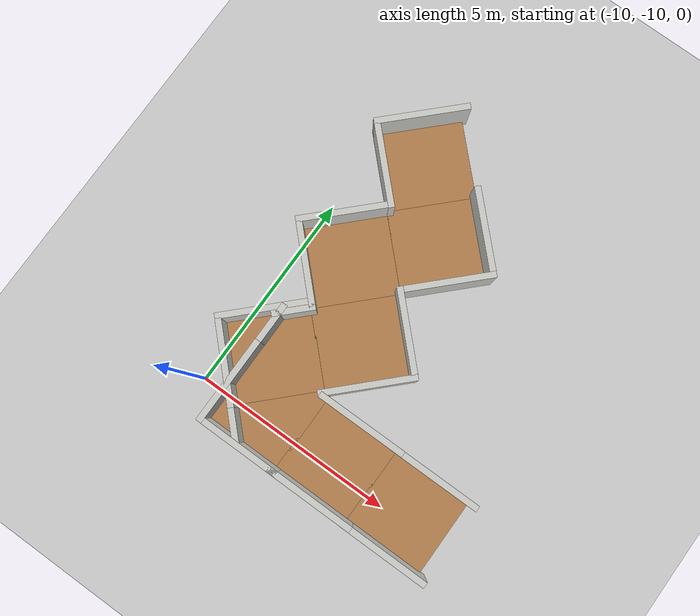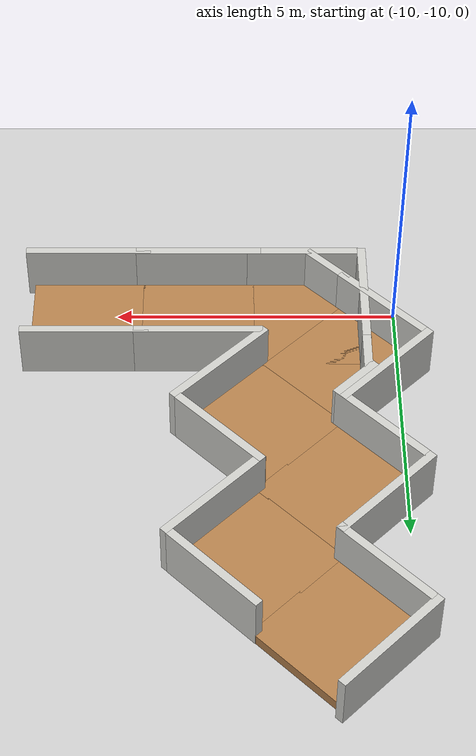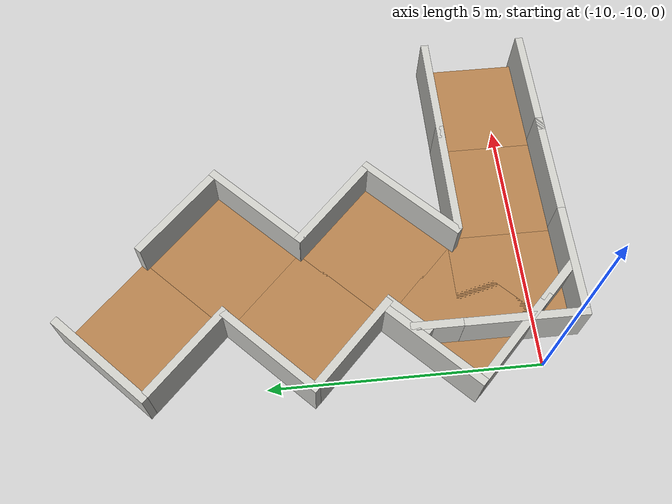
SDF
<sdf version="1.6">
 <world name="default">
  <model name="ground_plane">
   <static>1</static>
   <link name="link">
    <collision name="collision">
     <geometry><plane><normal>0 0 1</normal><size>100 100</size></plane></geometry>
     <surface><friction><ode><mu>100</mu><mu2>50</mu2></ode></friction></surface>
    </collision>
    <visual name="visual">
     <cast_shadows>0</cast_shadows>
     <geometry><plane><normal>0 0 1</normal><size>100 100</size></plane></geometry>
     <material>
      <script><uri>file://media/materials/scripts/gazebo.material</uri><name>Gazebo/Grey</name></script>
     </material>
    </visual>
   </link>
  </model>
  <model name="pg_maze_straight_clone">
   <pose>-4.48601 -9.71835 0 0 -0 0</pose>
   <link name="Wall_0">
    <collision name="Wall_0_Collision">
     <geometry><box><size>2.01 2 0.2</size></box></geometry>
     <pose>0 0 0.1 0 -0 0</pose>
    </collision>
    <visual name="Wall_0_Visual">
     <pose>0 0 0.1 0 -0 0</pose>
     <geometry><box><size>2.01 2 0.2</size></box></geometry>
     <material>
      <script><uri>file://media/materials/scripts/gazebo.material</uri><name>Gazebo/Wood</name></script>
      <ambient>1 1 1 1</ambient>
     </material>
     <meta><layer>0</layer></meta>
    </visual>
    <pose>0.003 -0.001 0 0 -0 0</pose>
   </link>
   <link name="Wall_2">
    <collision name="Wall_2_Collision">
     <geometry><box><size>2.25 0.15 1</size></box></geometry>
     <pose>0 0 0.5 0 -0 0</pose>
    </collision>
    <visual name="Wall_2_Visual">
     <pose>0 0 0.5 0 -0 0</pose>
     <geometry><box><size>2.25 0.15 1</size></box></geometry>
     <material>
      <script><uri>file://media/materials/scripts/gazebo.material</uri><name>Gazebo/CeilingTiled</name></script>
      <ambient>0.996078 0.47451 0.0196078 1</ambient>
     </material>
     <meta><layer>0</layer></meta>
    </visual>
    <pose>-0.005 0.985 0 0 -0 0</pose>
   </link>
   <link name="Wall_4">
    <collision name="Wall_4_Collision">
     <geometry><box><size>2.25 0.15 1</size></box></geometry>
     <pose>0 0 0.5 0 -0 0</pose>
    </collision>
    <visual name="Wall_4_Visual">
     <pose>0 0 0.5 0 -0 0</pose>
     <geometry><box><size>2.25 0.15 1</size></box></geometry>
     <material>
      <script><uri>file://media/materials/scripts/gazebo.material</uri><name>Gazebo/CeilingTiled</name></script>
      <ambient>0.996078 0.47451 0.0196078 1</ambient>
     </material>
     <meta><layer>0</layer></meta>
    </visual>
    <pose>0.005 -0.985 0 0 -0 0</pose>
   </link>
   <static>1</static>
  </model>
  <model name="pg_maze_corner_0_clone_0">
   <pose>-8.41113 -9.64636 0 0 -0 1.5708</pose>
   <link name="Wall_0">
    <collision name="Wall_0_Collision">
     <geometry><box><size>2.01 2 0.2</size></box></geometry>
     <pose>0 0 0.1 0 -0 0</pose>
    </collision>
    <visual name="Wall_0_Visual">
     <pose>0 0 0.1 0 -0 0</pose>
     <geometry><box><size>2.01 2 0.2</size></box></geometry>
     <material>
      <script><uri>file://media/materials/scripts/gazebo.material</uri><name>Gazebo/Wood</name></script>
      <ambient>1 1 1 1</ambient>
     </material>
     <meta><layer>0</layer></meta>
    </visual>
    <pose>0.009575 0.005575 0 0 -0 0</pose>
   </link>
   <link name="Wall_2">
    <collision name="Wall_2_Collision">
     <geometry><box><size>2.25 0.15 1</size></box></geometry>
     <pose>0 0 0.5 0 -0 0</pose>
    </collision>
    <visual name="Wall_2_Visual">
     <pose>0 0 0.5 0 -0 0</pose>
     <geometry><box><size>2.25 0.15 1</size></box></geometry>
     <material>
      <script><uri>file://media/materials/scripts/gazebo.material</uri><name>Gazebo/CeilingTiled</name></script>
      <ambient>0.996078 0.47451 0.0196078 1</ambient>
     </material>
     <meta><layer>0</layer></meta>
    </visual>
    <pose>0.001575 0.991575 0 0 -0 0</pose>
   </link>
   <link name="Wall_4">
    <collision name="Wall_4_Collision">
     <geometry><box><size>2 0.15 1</size></box></geometry>
     <pose>0 0 0.5 0 -0 0</pose>
    </collision>
    <visual name="Wall_4_Visual">
     <pose>0 0 0.5 0 -0 0</pose>
     <geometry><box><size>2 0.15 1</size></box></geometry>
     <material>
      <script><uri>file://media/materials/scripts/gazebo.material</uri><name>Gazebo/CeilingTiled</name></script>
      <ambient>0.996078 0.47451 0.0196078 1</ambient>
     </material>
     <meta><layer>0</layer></meta>
    </visual>
    <pose>-1.05157 -0.066575 0 0 -0 1.5708</pose>
   </link>
   <static>1</static>
  </model>
  <model name="pg_maze_straight_clone_clone">
   <pose>-6.46761 -9.71466 0 0 -0 0</pose>
   <link name="Wall_0">
    <collision name="Wall_0_Collision">
     <geometry><box><size>2.01 2 0.2</size></box></geometry>
     <pose>0 0 0.1 0 -0 0</pose>
    </collision>
    <visual name="Wall_0_Visual">
     <pose>0 0 0.1 0 -0 0</pose>
     <geometry><box><size>2.01 2 0.2</size></box></geometry>
     <material>
      <script><uri>file://media/materials/scripts/gazebo.material</uri><name>Gazebo/Wood</name></script>
      <ambient>1 1 1 1</ambient>
     </material>
     <meta><layer>0</layer></meta>
    </visual>
    <pose>0.003 -0.001 0 0 -0 0</pose>
   </link>
   <link name="Wall_2">
    <collision name="Wall_2_Collision">
     <geometry><box><size>2.25 0.15 1</size></box></geometry>
     <pose>0 0 0.5 0 -0 0</pose>
    </collision>
    <visual name="Wall_2_Visual">
     <pose>0 0 0.5 0 -0 0</pose>
     <geometry><box><size>2.25 0.15 1</size></box></geometry>
     <material>
      <script><uri>file://media/materials/scripts/gazebo.material</uri><name>Gazebo/CeilingTiled</name></script>
      <ambient>0.996078 0.47451 0.0196078 1</ambient>
     </material>
     <meta><layer>0</layer></meta>
    </visual>
    <pose>-0.005 0.985 0 0 -0 0</pose>
   </link>
   <link name="Wall_4">
    <collision name="Wall_4_Collision">
     <geometry><box><size>2.25 0.15 1</size></box></geometry>
     <pose>0 0 0.5 0 -0 0</pose>
    </collision>
    <visual name="Wall_4_Visual">
     <pose>0 0 0.5 0 -0 0</pose>
     <geometry><box><size>2.25 0.15 1</size></box></geometry>
     <material>
      <script><uri>file://media/materials/scripts/gazebo.material</uri><name>Gazebo/CeilingTiled</name></script>
      <ambient>0.996078 0.47451 0.0196078 1</ambient>
     </material>
     <meta><layer>0</layer></meta>
    </visual>
    <pose>0.005 -0.985 0 0 -0 0</pose>
   </link>
   <static>1</static>
  </model>
  <model name="pg_maze_corner_0_clone_0_clone">
   <pose>-7.55166 -7.25441 0 0 0 -2.35619</pose>
   <link name="Wall_0">
    <collision name="Wall_0_Collision">
     <geometry><box><size>2.01 2 0.2</size></box></geometry>
     <pose>0 0 0.1 0 -0 0</pose>
    </collision>
    <visual name="Wall_0_Visual">
     <pose>0 0 0.1 0 -0 0</pose>
     <geometry><box><size>2.01 2 0.2</size></box></geometry>
     <material>
      <script><uri>file://media/materials/scripts/gazebo.material</uri><name>Gazebo/Wood</name></script>
      <ambient>1 1 1 1</ambient>
     </material>
     <meta><layer>0</layer></meta>
    </visual>
    <pose>0.009575 0.005575 0 0 -0 0</pose>
   </link>
   <link name="Wall_2">
    <collision name="Wall_2_Collision">
     <geometry><box><size>2.25 0.15 1</size></box></geometry>
     <pose>0 0 0.5 0 -0 0</pose>
    </collision>
    <visual name="Wall_2_Visual">
     <pose>0 0 0.5 0 -0 0</pose>
     <geometry><box><size>2.25 0.15 1</size></box></geometry>
     <material>
      <script><uri>file://media/materials/scripts/gazebo.material</uri><name>Gazebo/CeilingTiled</name></script>
      <ambient>0.996078 0.47451 0.0196078 1</ambient>
     </material>
     <meta><layer>0</layer></meta>
    </visual>
    <pose>0.001575 0.991575 0 0 -0 0</pose>
   </link>
   <link name="Wall_4">
    <collision name="Wall_4_Collision">
     <geometry><box><size>2 0.15 1</size></box></geometry>
     <pose>0 0 0.5 0 -0 0</pose>
    </collision>
    <visual name="Wall_4_Visual">
     <pose>0 0 0.5 0 -0 0</pose>
     <geometry><box><size>2 0.15 1</size></box></geometry>
     <material>
      <script><uri>file://media/materials/scripts/gazebo.material</uri><name>Gazebo/CeilingTiled</name></script>
      <ambient>0.996078 0.47451 0.0196078 1</ambient>
     </material>
     <meta><layer>0</layer></meta>
    </visual>
    <pose>-1.05157 -0.066575 0 0 -0 1.5708</pose>
   </link>
   <static>1</static>
  </model>
  <model name="pg_maze_corner_0_clone_0_clone_clone">
   <pose>-9.01527 -8.62073 0 0 -0 0.785403</pose>
   <link name="Wall_0">
    <collision name="Wall_0_Collision">
     <geometry><box><size>2.01 2 0.2</size></box></geometry>
     <pose>0 0 0.1 0 -0 0</pose>
    </collision>
    <visual name="Wall_0_Visual">
     <pose>0 0 0.1 0 -0 0</pose>
     <geometry><box><size>2.01 2 0.2</size></box></geometry>
     <material>
      <script><uri>file://media/materials/scripts/gazebo.material</uri><name>Gazebo/Wood</name></script>
      <ambient>1 1 1 1</ambient>
     </material>
     <meta><layer>0</layer></meta>
    </visual>
    <pose>0.009575 0.005575 0 0 -0 0</pose>
   </link>
   <link name="Wall_2">
    <collision name="Wall_2_Collision">
     <geometry><box><size>2.25 0.15 1</size></box></geometry>
     <pose>0 0 0.5 0 -0 0</pose>
    </collision>
    <visual name="Wall_2_Visual">
     <pose>0 0 0.5 0 -0 0</pose>
     <geometry><box><size>2.25 0.15 1</size></box></geometry>
     <material>
      <script><uri>file://media/materials/scripts/gazebo.material</uri><name>Gazebo/CeilingTiled</name></script>
      <ambient>0.996078 0.47451 0.0196078 1</ambient>
     </material>
     <meta><layer>0</layer></meta>
    </visual>
    <pose>0.001575 0.991575 0 0 -0 0</pose>
   </link>
   <link name="Wall_4">
    <collision name="Wall_4_Collision">
     <geometry><box><size>2 0.15 1</size></box></geometry>
     <pose>0 0 0.5 0 -0 0</pose>
    </collision>
    <visual name="Wall_4_Visual">
     <pose>0 0 0.5 0 -0 0</pose>
     <geometry><box><size>2 0.15 1</size></box></geometry>
     <material>
      <script><uri>file://media/materials/scripts/gazebo.material</uri><name>Gazebo/CeilingTiled</name></script>
      <ambient>0.996078 0.47451 0.0196078 1</ambient>
     </material>
     <meta><layer>0</layer></meta>
    </visual>
    <pose>-1.05157 -0.066575 0 0 -0 1.5708</pose>
   </link>
   <static>1</static>
  </model>
  <model name="pg_maze_obstacle_1">
   <pose>-8.78198 -10.3439 0 0 0 -0.785398</pose>
   <link name="Wall_2">
    <collision name="Wall_2_Collision">
     <geometry><box><size>1 0.15 1</size></box></geometry>
     <pose>0 0 0.5 0 -0 0</pose>
    </collision>
    <visual name="Wall_2_Visual">
     <pose>0 0 0.5 0 -0 0</pose>
     <geometry><box><size>1 0.15 1</size></box></geometry>
     <material>
      <script><uri>file://media/materials/scripts/gazebo.material</uri><name>Gazebo/CeilingTiled</name></script>
      <ambient>0.996078 0.47451 0.0196078 1</ambient>
     </material>
     <meta><layer>0</layer></meta>
    </visual>
   </link>
   <static>1</static>
  </model>
  <model name="pg_maze_obstacle_1_clone">
   <pose>-9.39916 -8.07799 0 0 0 -1.5708</pose>
   <link name="Wall_2">
    <collision name="Wall_2_Collision">
     <geometry><box><size>1 0.15 1</size></box></geometry>
     <pose>0 0 0.5 0 -0 0</pose>
    </collision>
    <visual name="Wall_2_Visual">
     <pose>0 0 0.5 0 -0 0</pose>
     <geometry><box><size>1 0.15 1</size></box></geometry>
     <material>
      <script><uri>file://media/materials/scripts/gazebo.material</uri><name>Gazebo/CeilingTiled</name></script>
      <ambient>0.996078 0.47451 0.0196078 1</ambient>
     </material>
     <meta><layer>0</layer></meta>
    </visual>
   </link>
   <static>1</static>
  </model>
  <model name="pg_maze_corner_0_clone_0_clone_clone_0">
   <pose>-8.86355 -5.79245 0 0 -0 0.785403</pose>
   <link name="Wall_0">
    <collision name="Wall_0_Collision">
     <geometry><box><size>2.01 2 0.2</size></box></geometry>
     <pose>0 0 0.1 0 -0 0</pose>
    </collision>
    <visual name="Wall_0_Visual">
     <pose>0 0 0.1 0 -0 0</pose>
     <geometry><box><size>2.01 2 0.2</size></box></geometry>
     <material>
      <script><uri>file://media/materials/scripts/gazebo.material</uri><name>Gazebo/Wood</name></script>
      <ambient>1 1 1 1</ambient>
     </material>
     <meta><layer>0</layer></meta>
    </visual>
    <pose>0.009575 0.005575 0 0 -0 0</pose>
   </link>
   <link name="Wall_2">
    <collision name="Wall_2_Collision">
     <geometry><box><size>2.25 0.15 1</size></box></geometry>
     <pose>0 0 0.5 0 -0 0</pose>
    </collision>
    <visual name="Wall_2_Visual">
     <pose>0 0 0.5 0 -0 0</pose>
     <geometry><box><size>2.25 0.15 1</size></box></geometry>
     <material>
      <script><uri>file://media/materials/scripts/gazebo.material</uri><name>Gazebo/CeilingTiled</name></script>
      <ambient>0.996078 0.47451 0.0196078 1</ambient>
     </material>
     <meta><layer>0</layer></meta>
    </visual>
    <pose>0.001575 0.991575 0 0 -0 0</pose>
   </link>
   <link name="Wall_4">
    <collision name="Wall_4_Collision">
     <geometry><box><size>2 0.15 1</size></box></geometry>
     <pose>0 0 0.5 0 -0 0</pose>
    </collision>
    <visual name="Wall_4_Visual">
     <pose>0 0 0.5 0 -0 0</pose>
     <geometry><box><size>2 0.15 1</size></box></geometry>
     <material>
      <script><uri>file://media/materials/scripts/gazebo.material</uri><name>Gazebo/CeilingTiled</name></script>
      <ambient>0.996078 0.47451 0.0196078 1</ambient>
     </material>
     <meta><layer>0</layer></meta>
    </visual>
    <pose>-1.05157 -0.066575 0 0 -0 1.5708</pose>
   </link>
   <static>1</static>
  </model>
  <model name="pg_maze_corner_0_clone_0_clone_clone_1">
   <pose>-7.46134 -4.3553 0 0 0 -2.35619</pose>
   <link name="Wall_0">
    <collision name="Wall_0_Collision">
     <geometry><box><size>2.01 2 0.2</size></box></geometry>
     <pose>0 0 0.1 0 -0 0</pose>
    </collision>
    <visual name="Wall_0_Visual">
     <pose>0 0 0.1 0 -0 0</pose>
     <geometry><box><size>2.01 2 0.2</size></box></geometry>
     <material>
      <script><uri>file://media/materials/scripts/gazebo.material</uri><name>Gazebo/Wood</name></script>
      <ambient>1 1 1 1</ambient>
     </material>
     <meta><layer>0</layer></meta>
    </visual>
    <pose>0.009575 0.005575 0 0 -0 0</pose>
   </link>
   <link name="Wall_2">
    <collision name="Wall_2_Collision">
     <geometry><box><size>2.25 0.15 1</size></box></geometry>
     <pose>0 0 0.5 0 -0 0</pose>
    </collision>
    <visual name="Wall_2_Visual">
     <pose>0 0 0.5 0 -0 0</pose>
     <geometry><box><size>2.25 0.15 1</size></box></geometry>
     <material>
      <script><uri>file://media/materials/scripts/gazebo.material</uri><name>Gazebo/CeilingTiled</name></script>
      <ambient>0.996078 0.47451 0.0196078 1</ambient>
     </material>
     <meta><layer>0</layer></meta>
    </visual>
    <pose>0.001575 0.991575 0 0 -0 0</pose>
   </link>
   <link name="Wall_4">
    <collision name="Wall_4_Collision">
     <geometry><box><size>2 0.15 1</size></box></geometry>
     <pose>0 0 0.5 0 -0 0</pose>
    </collision>
    <visual name="Wall_4_Visual">
     <pose>0 0 0.5 0 -0 0</pose>
     <geometry><box><size>2 0.15 1</size></box></geometry>
     <material>
      <script><uri>file://media/materials/scripts/gazebo.material</uri><name>Gazebo/CeilingTiled</name></script>
      <ambient>0.996078 0.47451 0.0196078 1</ambient>
     </material>
     <meta><layer>0</layer></meta>
    </visual>
    <pose>-1.05157 -0.066575 0 0 -0 1.5708</pose>
   </link>
   <static>1</static>
  </model>
  <model name="pg_maze_corner_0_clone_0_clone_clone_0_clone">
   <pose>-8.76693 -2.90083 0 0 -0 0.785403</pose>
   <link name="Wall_0">
    <collision name="Wall_0_Collision">
     <geometry><box><size>2.01 2 0.2</size></box></geometry>
     <pose>0 0 0.1 0 -0 0</pose>
    </collision>
    <visual name="Wall_0_Visual">
     <pose>0 0 0.1 0 -0 0</pose>
     <geometry><box><size>2.01 2 0.2</size></box></geometry>
     <material>
      <script><uri>file://media/materials/scripts/gazebo.material</uri><name>Gazebo/Wood</name></script>
      <ambient>1 1 1 1</ambient>
     </material>
     <meta><layer>0</layer></meta>
    </visual>
    <pose>0.009575 0.005575 0 0 -0 0</pose>
   </link>
   <link name="Wall_2">
    <collision name="Wall_2_Collision">
     <geometry><box><size>2.25 0.15 1</size></box></geometry>
     <pose>0 0 0.5 0 -0 0</pose>
    </collision>
    <visual name="Wall_2_Visual">
     <pose>0 0 0.5 0 -0 0</pose>
     <geometry><box><size>2.25 0.15 1</size></box></geometry>
     <material>
      <script><uri>file://media/materials/scripts/gazebo.material</uri><name>Gazebo/CeilingTiled</name></script>
      <ambient>0.996078 0.47451 0.0196078 1</ambient>
     </material>
     <meta><layer>0</layer></meta>
    </visual>
    <pose>0.001575 0.991575 0 0 -0 0</pose>
   </link>
   <link name="Wall_4">
    <collision name="Wall_4_Collision">
     <geometry><box><size>2 0.15 1</size></box></geometry>
     <pose>0 0 0.5 0 -0 0</pose>
    </collision>
    <visual name="Wall_4_Visual">
     <pose>0 0 0.5 0 -0 0</pose>
     <geometry><box><size>2 0.15 1</size></box></geometry>
     <material>
      <script><uri>file://media/materials/scripts/gazebo.material</uri><name>Gazebo/CeilingTiled</name></script>
      <ambient>0.996078 0.47451 0.0196078 1</ambient>
     </material>
     <meta><layer>0</layer></meta>
    </visual>
    <pose>-1.05157 -0.066575 0 0 -0 1.5708</pose>
   </link>
   <static>1</static>
  </model>
  <model name="pg_maze_obstacle_2">
   <pose>-9.16987 -7.57548 0 0 -0 0.785398</pose>
   <link name="Wall_2">
    <collision name="Wall_2_Collision">
     <geometry><box><size>1 0.15 1</size></box></geometry>
     <pose>0 0 0.5 0 -0 0</pose>
    </collision>
    <visual name="Wall_2_Visual">
     <pose>0 0 0.5 0 -0 0</pose>
     <geometry><box><size>1 0.15 1</size></box></geometry>
     <material>
      <script><uri>file://media/materials/scripts/gazebo.material</uri><name>Gazebo/CeilingTiled</name></script>
      <ambient>0.996078 0.47451 0.0196078 1</ambient>
     </material>
     <meta><layer>0</layer></meta>
    </visual>
   </link>
   <static>1</static>
  </model>
 </world>
</sdf>
